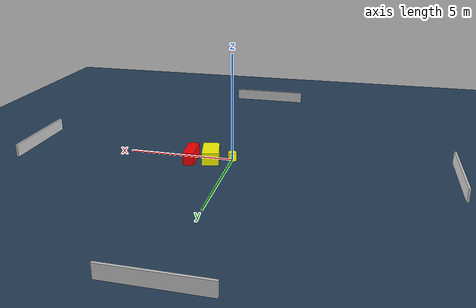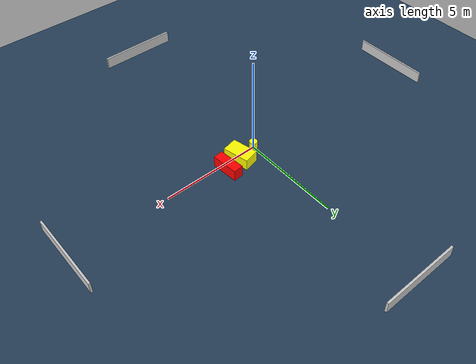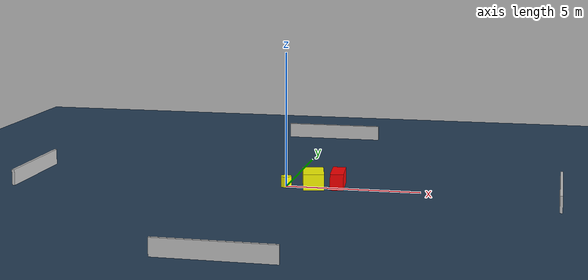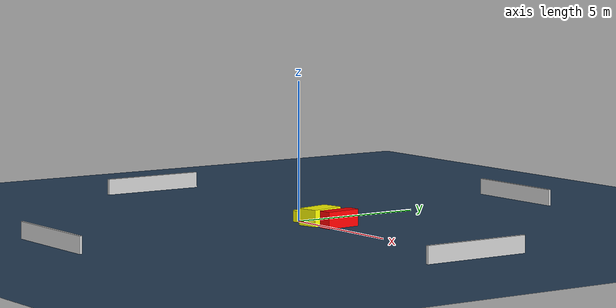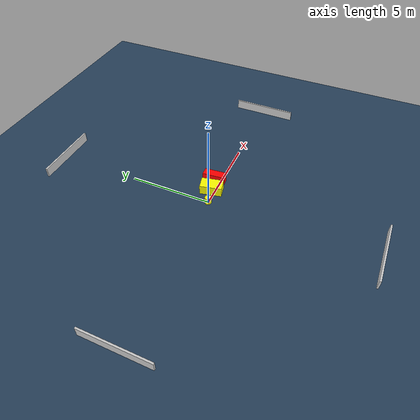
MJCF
<?xml version="1.0" ?>
<mujoco model="generated_environment">
  <option timestep="0.01" integrator="RK4" cone="elliptic"/>
  <default>
    <geom density="1"/>
  </default>
  <asset>
    <texture builtin="gradient" height="3072" name="skybox" rgb1="0.3 0.5 0.7" rgb2="0 0 0" type="skybox" width="512"/>
    <texture builtin="checker" height="300" name="groundplane" rgb1="0.2 0.3 0.4" rgb2="0.1 0.2 0.3" type="2d" width="300"/>
    <material name="groundplane" reflectance="0.2" texrepeat="5 5" texture="groundplane"/>
  </asset>
  <worldbody>
    <light dir="0 0 -1" directional="true" pos="0 0 1.5"/>
    <geom condim="3" friction="0.5 0.005 0.001" material="groundplane" name="floor" pos="0 0 0" size="0 0 0.05" type="plane"/>
    <body name="walls">
      <geom name="wall_1" condim="4" pos="-10.0 0.0 0.3" rgba="0.800000011920929 0.800000011920929 0.800000011920929 1.0" size="0.05 2.0 0.3" type="box"/>
      <geom name="wall_2" condim="4" pos="10.0 0.0 0.3" rgba="0.800000011920929 0.800000011920929 0.800000011920929 1.0" size="0.05 2.0 0.3" type="box"/>
      <geom name="wall_3" condim="4" pos="0.0 -10.0 0.3" rgba="0.800000011920929 0.800000011920929 0.800000011920929 1.0" size="2.0 0.05 0.3" type="box"/>
      <geom name="wall_4" condim="4" pos="0.0 10.0 0.3" rgba="0.800000011920929 0.800000011920929 0.800000011920929 1.0" size="2.0 0.05 0.3" type="box"/>
    </body>
    <body name="robot">
      <joint name="joint_x" type="slide" pos="0 0 0" axis="1 0 0"/>
      <joint name="joint_y" type="slide" pos="0 0 0" axis="0 1 0"/>
      <geom name="robot" type="cylinder" pos="0.0 0.0 0.2" size="0.2 0.2 0.0" mass="5.0" friction="1.0 0.005 0.0001" condim="4" rgba="1.0 1.0 0.0 1.0"/>
    </body>
    <body name="obstacle_1_movable">
      <geom name="obstacle_1_movable" condim="4" pos="0.9840855124620693 0.2170643060426708 0.3" euler="0 0 102.39591115668544" friction="0.0 0.005 0.001" rgba="1.0 1.0 0.0 1.0" size="0.6632170165402574 0.38484634532626705 0.3" type="box" mass="0.1"/>
      <joint type="free"/>
    </body>
    <body name="obstacle_2_static">
      <geom name="obstacle_2_static" condim="4" pos="1.8829261223035056 0.4138836828451717 0.3" euler="0 0 5.26940462841528" friction="0.0 0.005 0.001" rgba="1.0 0.0 0.0 1.0" size="0.24793578525143165 0.6752862358590643 0.3" type="box"/>
    </body>
  </worldbody>
  <actuator>
    <motor name="actuator_x" joint="joint_x" gear="1" ctrlrange="-1 1"/>
    <motor name="actuator_y" joint="joint_y" gear="1" ctrlrange="-1 1"/>
  </actuator>
</mujoco>
